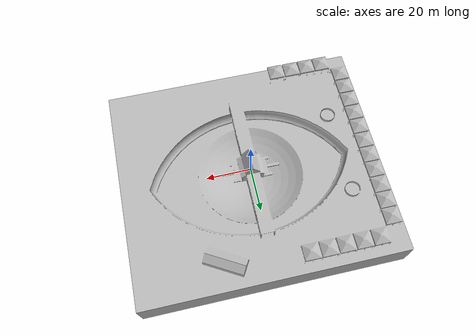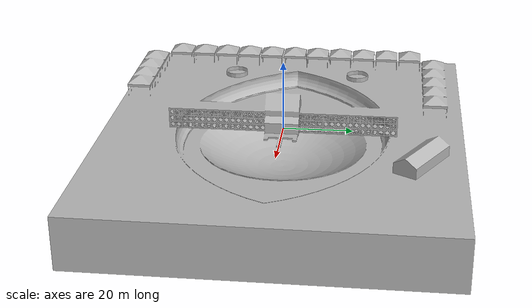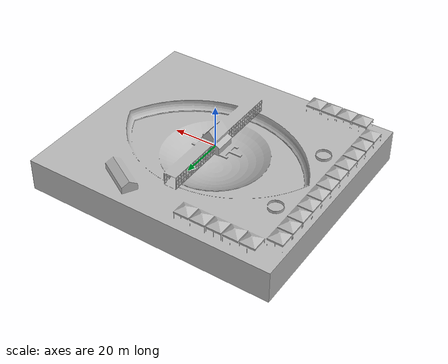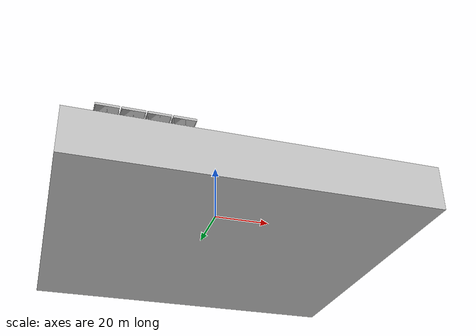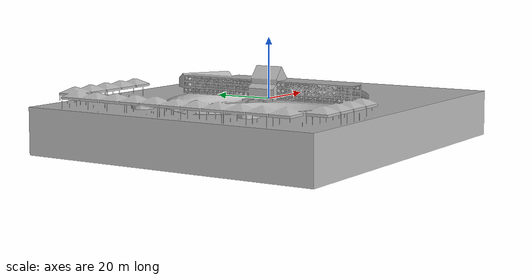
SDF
<?xml version="1.0"?>
<sdf version="1.11">
  <model name="transdec">
    <static>true</static>
    <link name="link">
      <visual name="ground_visual">
        <cast_shadows>false</cast_shadows>
        <pose>0 0 -12.1 1.57079632679 0 0</pose>
        <geometry>
          <!-- The mesh tag indicates that we will use a 3D mesh as
                a visual -->
          <mesh>
            <!-- The URI should refer to the 3D mesh. The "model:"
                URI scheme indicates that the we are referencing a Gazebo
                model. -->
            <uri>model://transdec/mesh/transdec_test.obj</uri>
          </mesh>
        </geometry>
      </visual>
      <collision name="ground">
        <pose>0 0 -12.1 1.57079632679 0 0</pose>
        <geometry>
          <!-- The mesh tag indicates that we will use a 3D mesh as
                a visual -->
            <!-- The URI should refer to the 3D mesh. The "model:"
                URI scheme indicates that the we are referencing a Gazebo
                model. -->
          <!-- Error where dartsim doesn't support mesh -->
        </geometry>
      </collision>

    </link>
  </model>
</sdf>
